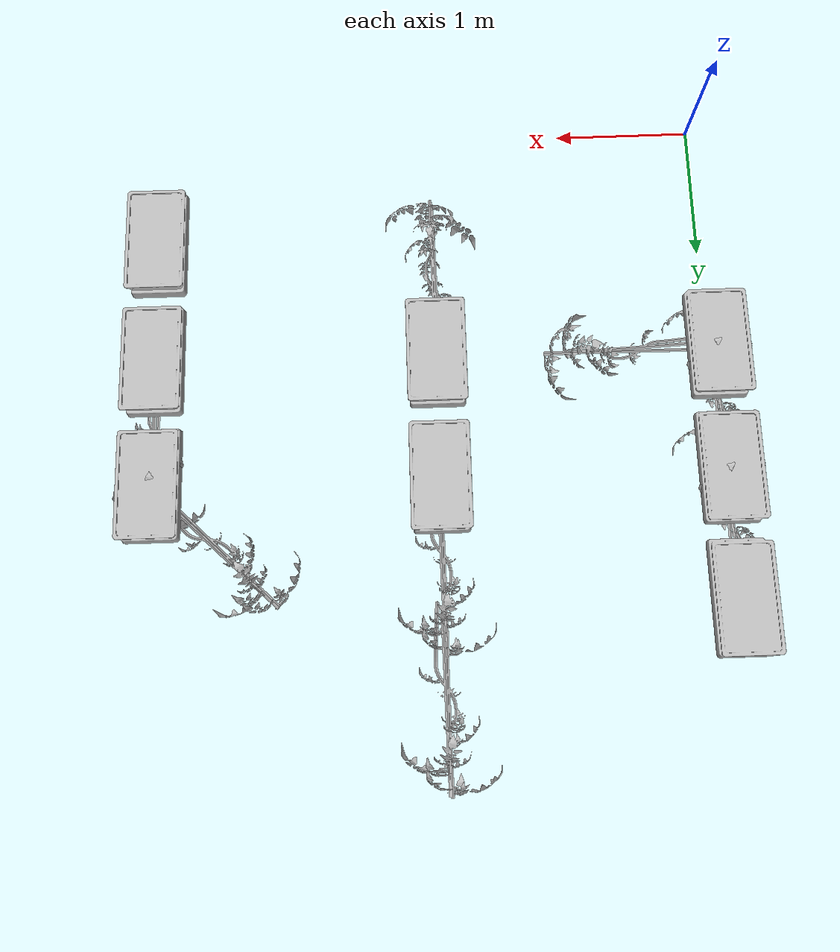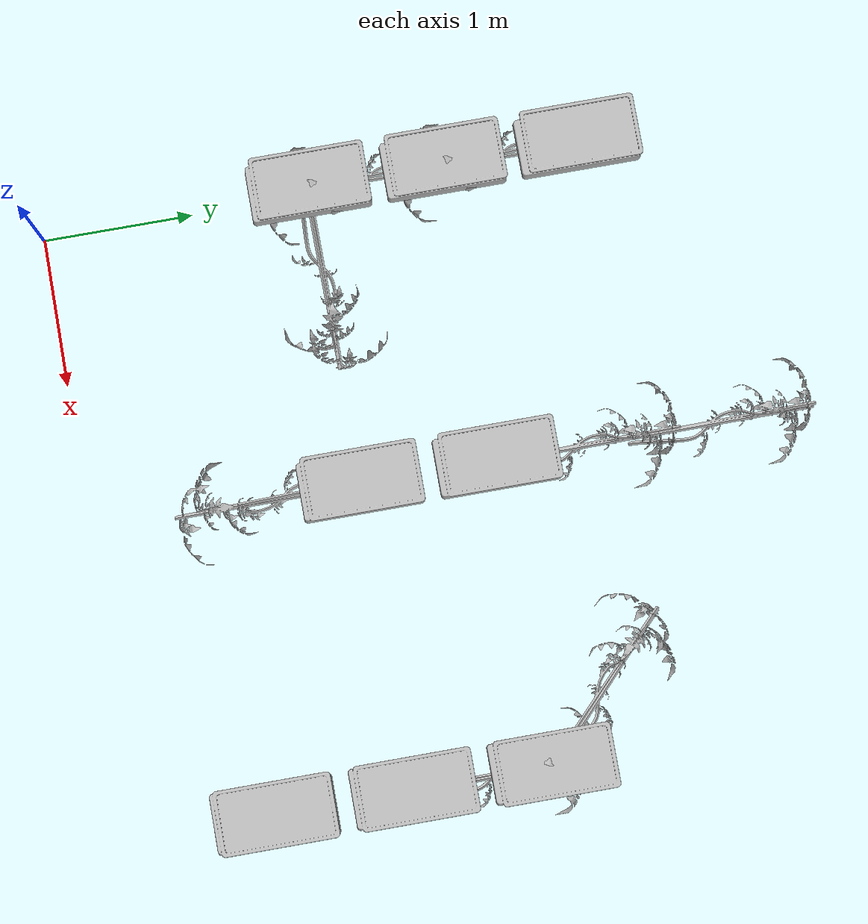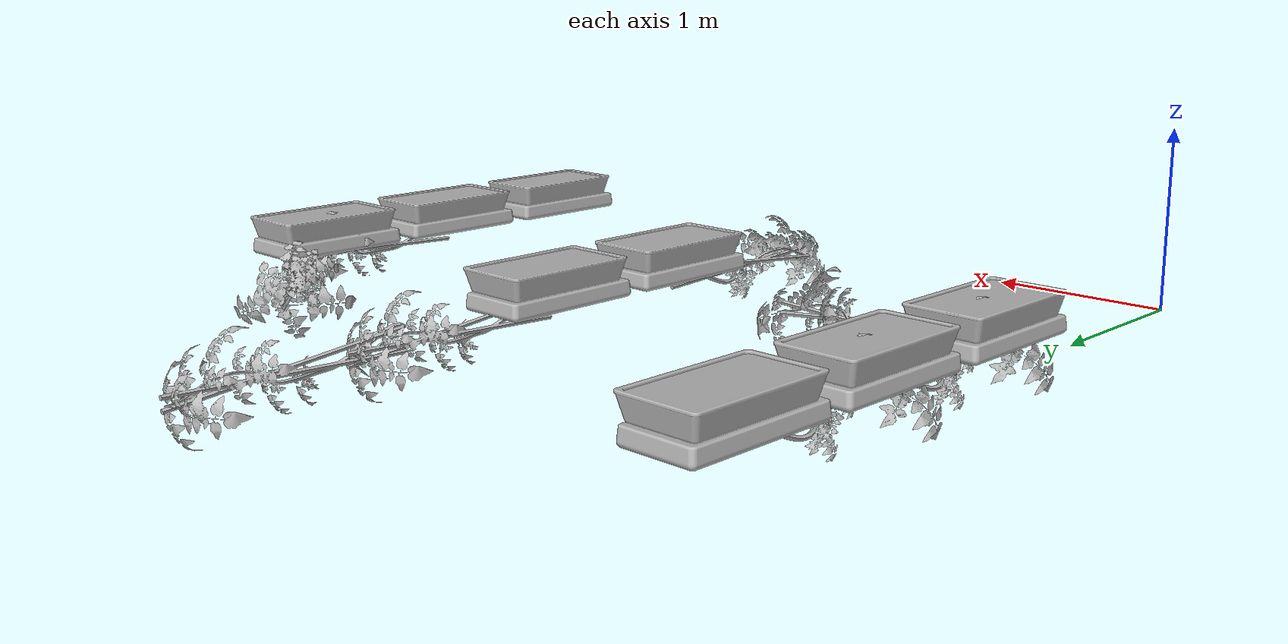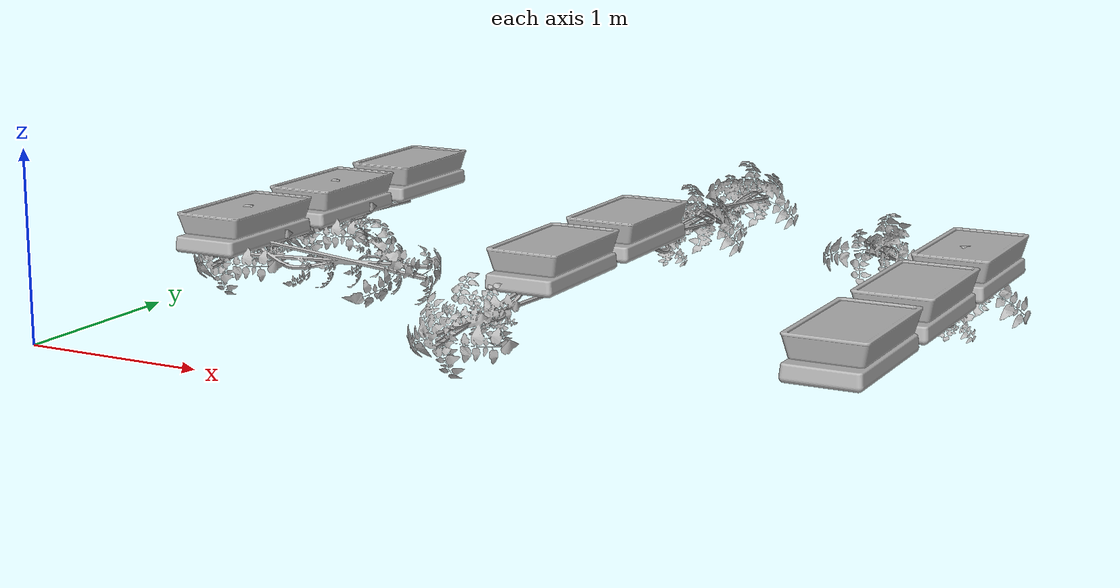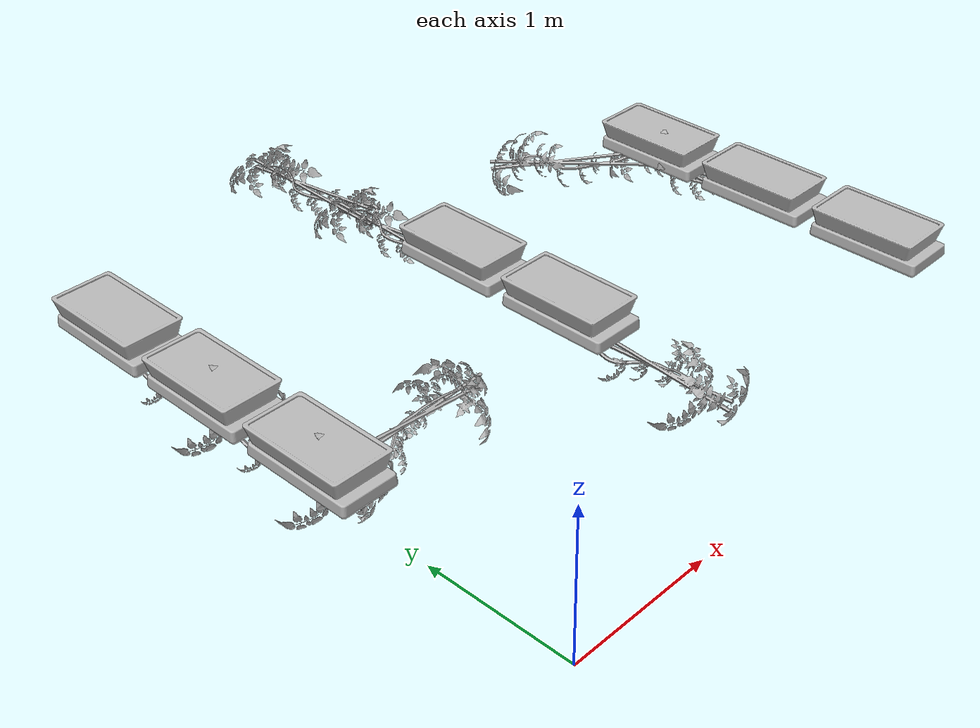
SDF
<sdf version="1.6">
 <world name="default">
  <model name="plant02">
   <static>1</static>
   <link name="tomato_plant_link">
    <visual name="visual">
     <pose>0 0 0 1.57 -0 0</pose>
     <geometry><mesh><uri>model://tomato_plant/meshes/tomato_plant.obj</uri></mesh></geometry>
    </visual>
    <collision name="collision"><geometry><box><size>0.1 0.1 0.1</size></box></geometry></collision>
   </link>
   <pose>0 1.8 0.18 0 -0 1.57</pose>
  </model>
  <model name="trough02">
   <static>1</static>
   <link name="trough_link">
    <visual name="visual"><geometry><mesh><uri>model://trough/meshes/truf.obj</uri></mesh></geometry></visual>
    <collision name="collision">
     <geometry><mesh><uri>model://trough/meshes/truf.obj</uri></mesh></geometry>
    </collision>
   </link>
   <pose>0 1.8 0.18 1.57 -0 1.57</pose>
  </model>
  <model name="plant03">
   <static>1</static>
   <link name="tomato_plant_link">
    <visual name="visual">
     <pose>0 0 0 1.57 -0 0</pose>
     <geometry><mesh><uri>model://tomato_plant/meshes/tomato_plant.obj</uri></mesh></geometry>
    </visual>
    <collision name="collision"><geometry><box><size>0.1 0.1 0.1</size></box></geometry></collision>
   </link>
   <pose>0 2.7 0.18 0 -0 0</pose>
  </model>
  <model name="trough03">
   <static>1</static>
   <link name="trough_link">
    <visual name="visual"><geometry><mesh><uri>model://trough/meshes/truf.obj</uri></mesh></geometry></visual>
    <collision name="collision">
     <geometry><mesh><uri>model://trough/meshes/truf.obj</uri></mesh></geometry>
    </collision>
   </link>
   <pose>0 2.7 0.18 1.57 -0 1.57</pose>
  </model>
  <model name="plant04">
   <static>1</static>
   <link name="tomato_plant_link">
    <visual name="visual">
     <pose>0 0 0 1.57 -0 0</pose>
     <geometry><mesh><uri>model://tomato_plant/meshes/tomato_plant.obj</uri></mesh></geometry>
    </visual>
    <collision name="collision"><geometry><box><size>0.1 0.1 0.1</size></box></geometry></collision>
   </link>
   <pose>0 3.6 0.18 0 -0 0</pose>
  </model>
  <model name="trough04">
   <static>1</static>
   <link name="trough_link">
    <visual name="visual"><geometry><mesh><uri>model://trough/meshes/truf.obj</uri></mesh></geometry></visual>
    <collision name="collision">
     <geometry><mesh><uri>model://trough/meshes/truf.obj</uri></mesh></geometry>
    </collision>
   </link>
   <pose>0 3.6 0.18 1.57 -0 1.57</pose>
  </model>
  <model name="plant12">
   <static>1</static>
   <link name="tomato_plant_link">
    <visual name="visual">
     <pose>0 0 0 1.57 -0 0</pose>
     <geometry><mesh><uri>model://tomato_plant/meshes/tomato_plant.obj</uri></mesh></geometry>
    </visual>
    <collision name="collision"><geometry><box><size>0.1 0.1 0.1</size></box></geometry></collision>
   </link>
   <pose>2 1.8 0.18 0 -0 0</pose>
  </model>
  <model name="trough12">
   <static>1</static>
   <link name="trough_link">
    <visual name="visual"><geometry><mesh><uri>model://trough/meshes/truf.obj</uri></mesh></geometry></visual>
    <collision name="collision">
     <geometry><mesh><uri>model://trough/meshes/truf.obj</uri></mesh></geometry>
    </collision>
   </link>
   <pose>2 1.8 0.18 1.57 -0 1.57</pose>
  </model>
  <model name="plant13">
   <static>1</static>
   <link name="tomato_plant_link">
    <visual name="visual">
     <pose>0 0 0 1.57 -0 0</pose>
     <geometry><mesh><uri>model://tomato_plant/meshes/tomato_plant.obj</uri></mesh></geometry>
    </visual>
    <collision name="collision"><geometry><box><size>0.1 0.1 0.1</size></box></geometry></collision>
   </link>
   <pose>2 2.7 0.18 0 -0 3.14</pose>
  </model>
  <model name="trough13">
   <static>1</static>
   <link name="trough_link">
    <visual name="visual"><geometry><mesh><uri>model://trough/meshes/truf.obj</uri></mesh></geometry></visual>
    <collision name="collision">
     <geometry><mesh><uri>model://trough/meshes/truf.obj</uri></mesh></geometry>
    </collision>
   </link>
   <pose>2 2.7 0.18 1.57 -0 1.57</pose>
  </model>
  <model name="plant14">
   <static>1</static>
   <link name="tomato_plant_link">
    <visual name="visual">
     <pose>0 0 0 1.57 -0 0</pose>
     <geometry><mesh><uri>model://tomato_plant/meshes/tomato_plant.obj</uri></mesh></geometry>
    </visual>
    <collision name="collision"><geometry><box><size>0.1 0.1 0.1</size></box></geometry></collision>
   </link>
   <pose>2 3.6 0.18 0 -0 3.14</pose>
  </model>
  <model name="trough21">
   <static>1</static>
   <link name="trough_link">
    <visual name="visual"><geometry><mesh><uri>model://trough/meshes/truf.obj</uri></mesh></geometry></visual>
    <collision name="collision">
     <geometry><mesh><uri>model://trough/meshes/truf.obj</uri></mesh></geometry>
    </collision>
   </link>
   <pose>4 0.9 0.18 1.57 -0 1.57</pose>
  </model>
  <model name="plant22">
   <static>1</static>
   <link name="tomato_plant_link">
    <visual name="visual">
     <pose>0 0 0 1.57 -0 0</pose>
     <geometry><mesh><uri>model://tomato_plant/meshes/tomato_plant.obj</uri></mesh></geometry>
    </visual>
    <collision name="collision"><geometry><box><size>0.1 0.1 0.1</size></box></geometry></collision>
   </link>
   <pose>4 1.8 0.18 0 -0 3.14</pose>
  </model>
  <model name="trough22">
   <static>1</static>
   <link name="trough_link">
    <visual name="visual"><geometry><mesh><uri>model://trough/meshes/truf.obj</uri></mesh></geometry></visual>
    <collision name="collision">
     <geometry><mesh><uri>model://trough/meshes/truf.obj</uri></mesh></geometry>
    </collision>
   </link>
   <pose>4 1.8 0.18 1.57 -0 1.57</pose>
  </model>
  <model name="plant23">
   <static>1</static>
   <link name="tomato_plant_link">
    <visual name="visual">
     <pose>0 0 0 1.57 -0 0</pose>
     <geometry><mesh><uri>model://tomato_plant/meshes/tomato_plant.obj</uri></mesh></geometry>
    </visual>
    <collision name="collision"><geometry><box><size>0.1 0.1 0.1</size></box></geometry></collision>
   </link>
   <pose>4 2.7 0.18 0 0 -2.35319</pose>
  </model>
  <model name="trough23">
   <static>1</static>
   <link name="trough_link">
    <visual name="visual"><geometry><mesh><uri>model://trough/meshes/truf.obj</uri></mesh></geometry></visual>
    <collision name="collision">
     <geometry><mesh><uri>model://trough/meshes/truf.obj</uri></mesh></geometry>
    </collision>
   </link>
   <pose>4 2.7 0.18 1.57 -0 1.57</pose>
  </model>
 </world>
</sdf>
